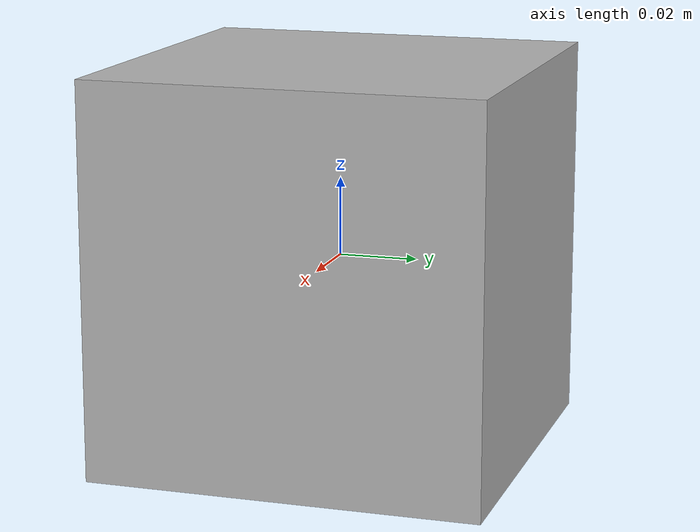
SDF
<sdf version='1.7'>
  <model name='cubesat'>
    <link name='frame'>
      <inertial>
        <pose>0 0 0 0 -0 0</pose>
        <mass>0.5</mass>
        <inertia>
          <ixx>0.00333</ixx>
          <ixy>0</ixy>
          <ixz>0</ixz>
          <iyy>0.00333</iyy>
          <iyz>0</iyz>
          <izz>0.00333</izz>
        </inertia>
      </inertial>
      <collision name='frame_collision'>
        <pose>0 0 0 0 -0 0</pose>
        <geometry>
          <box>
            <size>0.1 0.1 0.1</size>
          </box>
        </geometry>
        <surface>
          <contact>
            <ode/>
          </contact>
          <friction>
            <ode/>
          </friction>
        </surface>
      </collision>
      <visual name='frame_visual'>
        <pose>0 0 0 0 -0 0</pose>
        <geometry>
          <box>
            <size>0.1 0.1 0.1</size>
          </box>
        </geometry>
      </visual>
      <gravity>0</gravity>
      <sensor name='imu_sensor' type='imu'>
        <always_on>1</always_on>
        <update_rate>1000</update_rate>
        <visualize>1</visualize>
        <topic>__default_topic__</topic>
        <plugin name='imu_plugin' filename='libgazebo_ros_imu_sensor.so'>
          <topicName>imu</topicName>
          <bodyName>frame</bodyName>
          <updateRateHZ>1000</updateRateHZ>
          <angular_velocity>
            <x>
              <noise type='gaussian'>
                <mean>0.0</mean>
                <stddev>5e-2</stddev>
                <bias_mean>0</bias_mean>
                <bias_stddev>0</bias_stddev>
              </noise>
            </x>
            <y>
              <noise type='gaussian'>
                <mean>0.0</mean>
                <stddev>5e-2</stddev>
                <bias_mean>0</bias_mean>
                <bias_stddev>0</bias_stddev>
              </noise>
            </y>
            <z>
              <noise type='gaussian'>
                <mean>0.0</mean>
                <stddev>5e-2</stddev>
                <bias_mean>0</bias_mean>
                <bias_stddev>0</bias_stddev>
              </noise>
            </z>
          </angular_velocity>
          <orientation>
            <w>
              <noise type='gaussian'>
                <mean>0.0</mean>
                <stddev>5e-2</stddev>
                <bias_mean>0</bias_mean>
                <bias_stddev>0</bias_stddev>
              </noise>
            </w>
            <x>
              <noise type='gaussian'>
                <mean>0.0</mean>
                <stddev>5e-2</stddev>
                <bias_mean>0</bias_mean>
                <bias_stddev>0</bias_stddev>
              </noise>
            </x>
            <y>
              <noise type='gaussian'>
                <mean>0.0</mean>
                <stddev>5e-2</stddev>
                <bias_mean>0</bias_mean>
                <bias_stddev>0</bias_stddev>
              </noise>
            </y>
            <z>
              <noise type='gaussian'>
                <mean>0.0</mean>
                <stddev>5e-2</stddev>
                <bias_mean>0</bias_mean>
                <bias_stddev>0</bias_stddev>
              </noise>
            </z>
          </orientation>
          <xyzOffset>0 0 0</xyzOffset>
          <rpyOffset>0 0 0</rpyOffset>
        </plugin>
        <pose>0 0 0 0 -0 0</pose>
      </sensor>
    </link>
    <joint name='reaction_wheel_x_axis_shaft' type='revolute'>
      <pose relative_to='frame'>0.04 0 0 0 1.57 0</pose>
      <parent>frame</parent>
      <child>reaction_wheel_x_axis</child>
      <axis>
        <xyz>0 0 1</xyz>
        <limit>
          <lower>-1e+16</lower>
          <upper>1e+16</upper>
        </limit>
        <dynamics>
          <spring_reference>0</spring_reference>
          <spring_stiffness>0</spring_stiffness>
        </dynamics>
      </axis>
    </joint>
    <link name='reaction_wheel_x_axis'>
      <pose relative_to='reaction_wheel_x_axis_shaft'>0 0 0 0 -0 0</pose>
      <inertial>
        <pose>0 0 0 0 -0 0</pose>
        <mass>0.5</mass>
        <inertia>
          <ixx>0.0008</ixx>
          <ixy>0</ixy>
          <ixz>0</ixz>
          <iyy>0.000804167</iyy>
          <iyz>0</iyz>
          <izz>0.0016</izz>
        </inertia>
      </inertial>
      <collision name='reaction_wheel_x_axis_collision'>
        <pose>0 0 0 0 -0 0</pose>
        <geometry>
          <cylinder>
            <length>0.005</length>
            <radius>0.035</radius>
          </cylinder>
        </geometry>
        <surface>
          <contact>
            <ode/>
          </contact>
          <friction>
            <ode/>
          </friction>
        </surface>
      </collision>
      <visual name='reaction_wheel_x_axis_visual'>
        <pose>0 0 0 0 -0 0</pose>
        <geometry>
          <cylinder>
            <length>0.005</length>
            <radius>0.035</radius>
          </cylinder>
        </geometry>
        <material>
          <script>
            <name>Gazebo/Red</name>
            <uri>file://media/materials/scripts/gazebo.material</uri>
          </script>
        </material>
      </visual>
      <gravity>0</gravity>
    </link>
    <joint name='reaction_wheel_y_axis_shaft' type='revolute'>
      <pose relative_to='frame'>0 0.04 0 1.57 -0 0</pose>
      <parent>frame</parent>
      <child>reaction_wheel_y_axis</child>
      <axis>
        <xyz>0 0 1</xyz>
        <limit>
          <lower>-1e+16</lower>
          <upper>1e+16</upper>
        </limit>
        <dynamics>
          <spring_reference>0</spring_reference>
          <spring_stiffness>0</spring_stiffness>
        </dynamics>
      </axis>
    </joint>
    <link name='reaction_wheel_y_axis'>
      <pose relative_to='reaction_wheel_y_axis_shaft'>0 0 0 0 -0 0</pose>
      <inertial>
        <pose>0 0 0 0 -0 0</pose>
        <mass>0.5</mass>
        <inertia>
          <ixx>0.000804167</ixx>
          <ixy>0</ixy>
          <ixz>0</ixz>
          <iyy>0.000804167</iyy>
          <iyz>0</iyz>
          <izz>0.0016</izz>
        </inertia>
      </inertial>
      <collision name='reaction_wheel_y_axis_collision'>
        <pose>0 0 0 0 -0 0</pose>
        <geometry>
          <cylinder>
            <length>0.005</length>
            <radius>0.035</radius>
          </cylinder>
        </geometry>
        <surface>
          <contact>
            <ode/>
          </contact>
          <friction>
            <ode/>
          </friction>
        </surface>
      </collision>
      <visual name='reaction_wheel_y_axis_visual'>
        <pose>0 0 0 0 -0 0</pose>
        <geometry>
          <cylinder>
            <length>0.005</length>
            <radius>0.035</radius>
          </cylinder>
        </geometry>
        <material>
          <script>
            <name>Gazebo/Green</name>
            <uri>file://media/materials/scripts/gazebo.material</uri>
          </script>
        </material>
      </visual>
      <gravity>0</gravity>
    </link>
    <joint name='reaction_wheel_z_axis_shaft' type='revolute'>
      <pose relative_to='frame'>0 0 -0.04 0 -0 0</pose>
      <parent>frame</parent>
      <child>reaction_wheel_z_axis</child>
      <axis>
        <xyz>0 0 1</xyz>
        <limit>
          <lower>-1e+16</lower>
          <upper>1e+16</upper>
        </limit>
        <dynamics>
          <spring_reference>0</spring_reference>
          <spring_stiffness>0</spring_stiffness>
        </dynamics>
      </axis>
    </joint>
    <link name='reaction_wheel_z_axis'>
      <pose relative_to='reaction_wheel_z_axis_shaft'>0 0 0 0 -0 0</pose>
      <inertial>
        <pose>0 0 0 0 -0 0</pose>
        <mass>0.5</mass>
        <inertia>
          <ixx>0.000804167</ixx>
          <ixy>0</ixy>
          <ixz>0</ixz>
          <iyy>0.000804167</iyy>
          <iyz>0</iyz>
          <izz>0.0016</izz>
        </inertia>
      </inertial>
      <collision name='reaction_wheel_z_axis_collision'>
        <pose>0 0 0 0 -0 0</pose>
        <geometry>
          <cylinder>
            <length>0.005</length>
            <radius>0.035</radius>
          </cylinder>
        </geometry>
        <surface>
          <contact>
            <ode/>
          </contact>
          <friction>
            <ode/>
          </friction>
        </surface>
      </collision>
      <visual name='reaction_wheel_z_axis_visual'>
        <pose>0 0 0 0 -0 0</pose>
        <geometry>
          <cylinder>
            <length>0.005</length>
            <radius>0.035</radius>
          </cylinder>
        </geometry>
        <material>
          <script>
            <name>Gazebo/Blue</name>
            <uri>file://media/materials/scripts/gazebo.material</uri>
          </script>
        </material>
      </visual>
      <gravity>0</gravity>
    </link>
    <plugin name='dc_motor_reaction_wheel_x' filename='/home/matheuswagner/repos/adaptive-cubesat-adcs/cubesat-simulation/src/cubesat_gazebo/plugins/dc_motor_plugin/build/libdc_motor_plugin.so'>
      <motor_shaft_joint>reaction_wheel_x_axis_shaft</motor_shaft_joint>
    </plugin>
    <plugin name='dc_motor_reaction_wheel_y' filename='/home/matheuswagner/repos/adaptive-cubesat-adcs/cubesat-simulation/src/cubesat_gazebo/plugins/dc_motor_plugin/build/libdc_motor_plugin.so'>
      <motor_shaft_joint>reaction_wheel_y_axis_shaft</motor_shaft_joint>
    </plugin>
    <static>0</static>
    <plugin name='dc_motor_reaction_wheel_z' filename='/home/matheuswagner/repos/adaptive-cubesat-adcs/cubesat-simulation/src/cubesat_gazebo/plugins/dc_motor_plugin/build/libdc_motor_plugin.so'>
      <motor_shaft_joint>reaction_wheel_z_axis_shaft</motor_shaft_joint>
    </plugin>
  </model>
</sdf>
